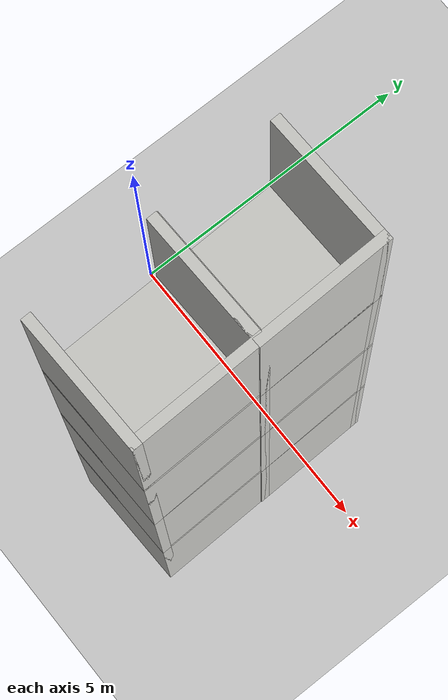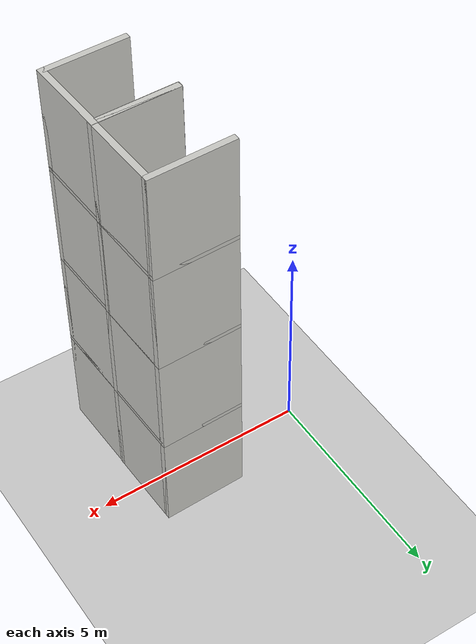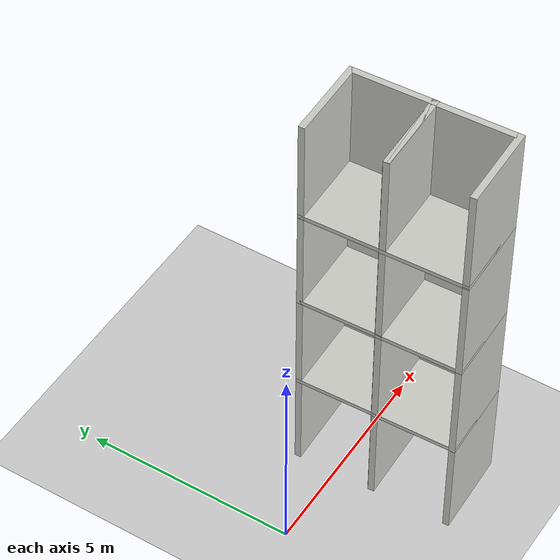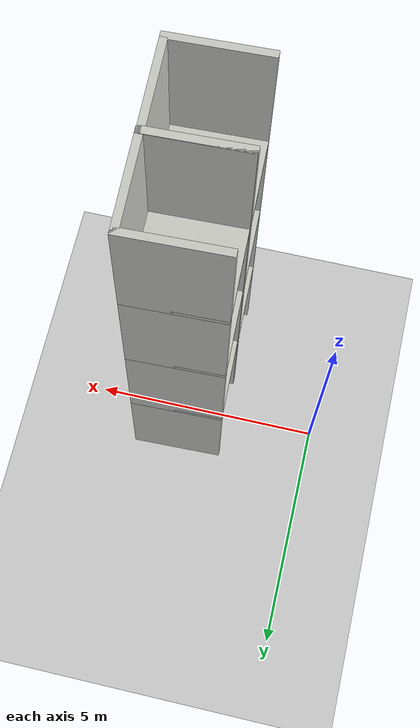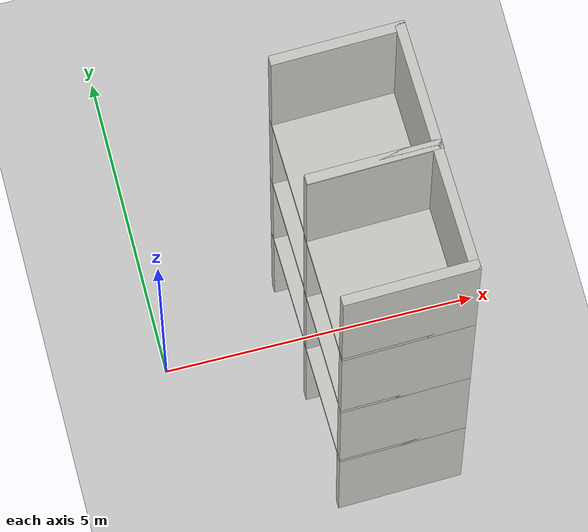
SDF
<sdf version="1.7">
 <world name="default">
  <light name="sun" type="directional">
   <pose>0 0 10 0 -0 0</pose>
   <diffuse>0.8 0.8 0.8 1</diffuse>
   <specular>0.2 0.2 0.2 1</specular>
   <attenuation>
    <range>1000</range>
    <constant>0.9</constant>
    <linear>0.01</linear>
    <quadratic>0.001</quadratic>
   </attenuation>
   <direction>-0.5 0.1 -0.9</direction>
   <spot><inner_angle>0</inner_angle><outer_angle>0</outer_angle><falloff>0</falloff></spot>
  </light>
  <model name="ground_plane">
   <static>1</static>
   <link name="link">
    <collision name="collision">
     <geometry><plane><normal>0 0 1</normal><size>100 100</size></plane></geometry>
     <surface>
      <contact><collide_bitmask>65535</collide_bitmask></contact>
      <friction><ode><mu>100</mu><mu2>50</mu2></ode></friction>
     </surface>
    </collision>
    <visual name="visual">
     <cast_shadows>0</cast_shadows>
     <geometry><plane><normal>0 0 1</normal><size>100 100</size></plane></geometry>
     <material>
      <script><uri>file://media/materials/scripts/gazebo.material</uri><name>Gazebo/Grey</name></script>
     </material>
    </visual>
   </link>
  </model>
  <gravity>0 0 -9.8</gravity>
  <magnetic_field>6e-06 2.3e-05 -4.2e-05</magnetic_field>
  <atmosphere type="adiabatic"/>
  <physics type="ode">
   <max_step_size>0.001</max_step_size>
   <real_time_factor>1</real_time_factor>
   <real_time_update_rate>1000</real_time_update_rate>
  </physics>
  <scene><ambient>0.4 0.4 0.4 1</ambient><background>0.7 0.7 0.7 1</background><shadows>1</shadows></scene>
  <spherical_coordinates>
   <surface_model>EARTH_WGS84</surface_model>
   <latitude_deg>0</latitude_deg>
   <longitude_deg>0</longitude_deg>
   <elevation>0</elevation>
   <heading_deg>0</heading_deg>
  </spherical_coordinates>
  <model name="4th_building">
   <pose>2.36923 0.08295 0 0 -0 1.59915</pose>
   <link name="Floor_1">
    <collision name="Floor_1_Collision">
     <geometry><box><size>2 2 0.1</size></box></geometry>
     <pose>0 0 0.05 0 -0 0</pose>
    </collision>
    <visual name="Floor_1_Visual">
     <pose>0 0 0.05 0 -0 0</pose>
     <geometry><box><size>2 2 0.1</size></box></geometry>
     <material>
      <script><uri>file://media/materials/scripts/gazebo.material</uri><name>Gazebo/CeilingTiled</name></script>
      <ambient>1 1 1 1</ambient>
     </material>
     <meta><layer>1</layer></meta>
    </visual>
    <pose>-1.9225 -0.6325 2.5 0 -0 0</pose>
   </link>
   <link name="Floor_10">
    <collision name="Floor_10_Collision">
     <geometry><box><size>2 2 0.1</size></box></geometry>
     <pose>0 0 0.05 0 -0 0</pose>
    </collision>
    <visual name="Floor_10_Visual">
     <pose>0 0 0.05 0 -0 0</pose>
     <geometry><box><size>2 2 0.1</size></box></geometry>
     <material>
      <script><uri>file://media/materials/scripts/gazebo.material</uri><name>Gazebo/CeilingTiled</name></script>
      <ambient>1 1 1 1</ambient>
     </material>
     <meta><layer>3</layer></meta>
    </visual>
    <pose>-1.9225 -0.6325 7.5 0 -0 0</pose>
   </link>
   <link name="Floor_9">
    <collision name="Floor_9_Collision">
     <geometry><box><size>2 2 0.1</size></box></geometry>
     <pose>0 0 0.05 0 -0 0</pose>
    </collision>
    <visual name="Floor_9_Visual">
     <pose>0 0 0.05 0 -0 0</pose>
     <geometry><box><size>2 2 0.1</size></box></geometry>
     <material>
      <script><uri>file://media/materials/scripts/gazebo.material</uri><name>Gazebo/CeilingTiled</name></script>
      <ambient>1 1 1 1</ambient>
     </material>
     <meta><layer>2</layer></meta>
    </visual>
    <pose>-1.9225 -0.6325 5 0 -0 0</pose>
   </link>
   <link name="Wall_13">
    <collision name="Wall_13_Collision">
     <geometry><box><size>2 0.15 2.5</size></box></geometry>
     <pose>0 0 1.25 0 -0 0</pose>
    </collision>
    <visual name="Wall_13_Visual">
     <pose>0 0 1.25 0 -0 0</pose>
     <geometry><box><size>2 0.15 2.5</size></box></geometry>
     <material>
      <script><uri>file://media/materials/scripts/gazebo.material</uri><name>Gazebo/CeilingTiled</name></script>
      <ambient>1 1 1 1</ambient>
     </material>
     <meta><layer>0</layer></meta>
    </visual>
    <pose>-2.8475 -0.6325 0 0 -0 -1.5708</pose>
   </link>
   <link name="Wall_14">
    <collision name="Wall_14_Collision">
     <geometry><box><size>2 0.15 2.5</size></box></geometry>
     <pose>0 0 1.25 0 -0 0</pose>
    </collision>
    <visual name="Wall_14_Visual">
     <pose>0 0 1.25 0 -0 0</pose>
     <geometry><box><size>2 0.15 2.5</size></box></geometry>
     <material>
      <script><uri>file://media/materials/scripts/gazebo.material</uri><name>Gazebo/CeilingTiled</name></script>
      <ambient>1 1 1 1</ambient>
     </material>
     <meta><layer>0</layer></meta>
    </visual>
    <pose>-1.9225 -1.5575 0 0 -0 0</pose>
   </link>
   <link name="Wall_15">
    <collision name="Wall_15_Collision">
     <geometry><box><size>2 0.15 2.5</size></box></geometry>
     <pose>0 0 1.25 0 -0 0</pose>
    </collision>
    <visual name="Wall_15_Visual">
     <pose>0 0 1.25 0 -0 0</pose>
     <geometry><box><size>2 0.15 2.5</size></box></geometry>
     <material>
      <script><uri>file://media/materials/scripts/gazebo.material</uri><name>Gazebo/CeilingTiled</name></script>
      <ambient>1 1 1 1</ambient>
     </material>
     <meta><layer>0</layer></meta>
    </visual>
    <pose>-0.9975 -0.6325 0 0 -0 1.5708</pose>
   </link>
   <link name="Wall_17">
    <collision name="Wall_17_Collision">
     <geometry><box><size>2 0.15 2.5</size></box></geometry>
     <pose>0 0 1.25 0 -0 0</pose>
    </collision>
    <visual name="Wall_17_Visual">
     <pose>0 0 1.25 0 -0 0</pose>
     <geometry><box><size>2 0.15 2.5</size></box></geometry>
     <material>
      <script><uri>file://media/materials/scripts/gazebo.material</uri><name>Gazebo/CeilingTiled</name></script>
      <ambient>1 1 1 1</ambient>
     </material>
     <meta><layer>1</layer></meta>
    </visual>
    <pose>-2.8475 -0.6325 2.5 0 -0 -1.5708</pose>
   </link>
   <link name="Wall_18">
    <collision name="Wall_18_Collision">
     <geometry><box><size>2 0.15 2.5</size></box></geometry>
     <pose>0 0 1.25 0 -0 0</pose>
    </collision>
    <visual name="Wall_18_Visual">
     <pose>0 0 1.25 0 -0 0</pose>
     <geometry><box><size>2 0.15 2.5</size></box></geometry>
     <material>
      <script><uri>file://media/materials/scripts/gazebo.material</uri><name>Gazebo/CeilingTiled</name></script>
      <ambient>1 1 1 1</ambient>
     </material>
     <meta><layer>1</layer></meta>
    </visual>
    <pose>-1.9225 -1.5575 2.5 0 -0 0</pose>
   </link>
   <link name="Wall_19">
    <collision name="Wall_19_Collision">
     <geometry><box><size>2 0.15 2.5</size></box></geometry>
     <pose>0 0 1.25 0 -0 0</pose>
    </collision>
    <visual name="Wall_19_Visual">
     <pose>0 0 1.25 0 -0 0</pose>
     <geometry><box><size>2 0.15 2.5</size></box></geometry>
     <material>
      <script><uri>file://media/materials/scripts/gazebo.material</uri><name>Gazebo/CeilingTiled</name></script>
      <ambient>1 1 1 1</ambient>
     </material>
     <meta><layer>1</layer></meta>
    </visual>
    <pose>-0.9975 -0.6325 2.5 0 -0 1.5708</pose>
   </link>
   <link name="Wall_40">
    <collision name="Wall_40_Collision">
     <geometry><box><size>2 0.15 2.5</size></box></geometry>
     <pose>0 0 1.25 0 -0 0</pose>
    </collision>
    <visual name="Wall_40_Visual">
     <pose>0 0 1.25 0 -0 0</pose>
     <geometry><box><size>2 0.15 2.5</size></box></geometry>
     <material>
      <script><uri>file://media/materials/scripts/gazebo.material</uri><name>Gazebo/CeilingTiled</name></script>
      <ambient>1 1 1 1</ambient>
     </material>
     <meta><layer>2</layer></meta>
    </visual>
    <pose>-2.8475 -0.6325 5 0 -0 -1.5708</pose>
   </link>
   <link name="Wall_41">
    <collision name="Wall_41_Collision">
     <geometry><box><size>2 0.15 2.5</size></box></geometry>
     <pose>0 0 1.25 0 -0 0</pose>
    </collision>
    <visual name="Wall_41_Visual">
     <pose>0 0 1.25 0 -0 0</pose>
     <geometry><box><size>2 0.15 2.5</size></box></geometry>
     <material>
      <script><uri>file://media/materials/scripts/gazebo.material</uri><name>Gazebo/CeilingTiled</name></script>
      <ambient>1 1 1 1</ambient>
     </material>
     <meta><layer>2</layer></meta>
    </visual>
    <pose>-1.9225 -1.5575 5 0 -0 0</pose>
   </link>
   <link name="Wall_42">
    <collision name="Wall_42_Collision">
     <geometry><box><size>2 0.15 2.5</size></box></geometry>
     <pose>0 0 1.25 0 -0 0</pose>
    </collision>
    <visual name="Wall_42_Visual">
     <pose>0 0 1.25 0 -0 0</pose>
     <geometry><box><size>2 0.15 2.5</size></box></geometry>
     <material>
      <script><uri>file://media/materials/scripts/gazebo.material</uri><name>Gazebo/CeilingTiled</name></script>
      <ambient>1 1 1 1</ambient>
     </material>
     <meta><layer>2</layer></meta>
    </visual>
    <pose>-0.9975 -0.6325 5 0 -0 1.5708</pose>
   </link>
   <link name="Wall_43">
    <collision name="Wall_43_Collision">
     <geometry><box><size>2 0.15 2.5</size></box></geometry>
     <pose>0 0 1.25 0 -0 0</pose>
    </collision>
    <visual name="Wall_43_Visual">
     <pose>0 0 1.25 0 -0 0</pose>
     <geometry><box><size>2 0.15 2.5</size></box></geometry>
     <material>
      <script><uri>file://media/materials/scripts/gazebo.material</uri><name>Gazebo/CeilingTiled</name></script>
      <ambient>1 1 1 1</ambient>
     </material>
     <meta><layer>3</layer></meta>
    </visual>
    <pose>-2.8475 -0.6325 7.5 0 -0 -1.5708</pose>
   </link>
   <link name="Wall_44">
    <collision name="Wall_44_Collision">
     <geometry><box><size>2 0.15 2.5</size></box></geometry>
     <pose>0 0 1.25 0 -0 0</pose>
    </collision>
    <visual name="Wall_44_Visual">
     <pose>0 0 1.25 0 -0 0</pose>
     <geometry><box><size>2 0.15 2.5</size></box></geometry>
     <material>
      <script><uri>file://media/materials/scripts/gazebo.material</uri><name>Gazebo/CeilingTiled</name></script>
      <ambient>1 1 1 1</ambient>
     </material>
     <meta><layer>3</layer></meta>
    </visual>
    <pose>-1.9225 -1.5575 7.5 0 -0 0</pose>
   </link>
   <link name="Wall_45">
    <collision name="Wall_45_Collision">
     <geometry><box><size>2 0.15 2.5</size></box></geometry>
     <pose>0 0 1.25 0 -0 0</pose>
    </collision>
    <visual name="Wall_45_Visual">
     <pose>0 0 1.25 0 -0 0</pose>
     <geometry><box><size>2 0.15 2.5</size></box></geometry>
     <material>
      <script><uri>file://media/materials/scripts/gazebo.material</uri><name>Gazebo/CeilingTiled</name></script>
      <ambient>1 1 1 1</ambient>
     </material>
     <meta><layer>3</layer></meta>
    </visual>
    <pose>-0.9975 -0.6325 7.5 0 -0 1.5708</pose>
   </link>
   <static>1</static>
  </model>
  <model name="4th_building_clone">
   <pose>2.32615 1.9428 0 0 -0 1.59915</pose>
   <link name="Floor_1">
    <collision name="Floor_1_Collision">
     <geometry><box><size>2 2 0.1</size></box></geometry>
     <pose>0 0 0.05 0 -0 0</pose>
    </collision>
    <visual name="Floor_1_Visual">
     <pose>0 0 0.05 0 -0 0</pose>
     <geometry><box><size>2 2 0.1</size></box></geometry>
     <material>
      <script><uri>file://media/materials/scripts/gazebo.material</uri><name>Gazebo/CeilingTiled</name></script>
      <ambient>1 1 1 1</ambient>
     </material>
     <meta><layer>1</layer></meta>
    </visual>
    <pose>-1.9225 -0.6325 2.5 0 -0 0</pose>
   </link>
   <link name="Floor_10">
    <collision name="Floor_10_Collision">
     <geometry><box><size>2 2 0.1</size></box></geometry>
     <pose>0 0 0.05 0 -0 0</pose>
    </collision>
    <visual name="Floor_10_Visual">
     <pose>0 0 0.05 0 -0 0</pose>
     <geometry><box><size>2 2 0.1</size></box></geometry>
     <material>
      <script><uri>file://media/materials/scripts/gazebo.material</uri><name>Gazebo/CeilingTiled</name></script>
      <ambient>1 1 1 1</ambient>
     </material>
     <meta><layer>3</layer></meta>
    </visual>
    <pose>-1.9225 -0.6325 7.5 0 -0 0</pose>
   </link>
   <link name="Floor_9">
    <collision name="Floor_9_Collision">
     <geometry><box><size>2 2 0.1</size></box></geometry>
     <pose>0 0 0.05 0 -0 0</pose>
    </collision>
    <visual name="Floor_9_Visual">
     <pose>0 0 0.05 0 -0 0</pose>
     <geometry><box><size>2 2 0.1</size></box></geometry>
     <material>
      <script><uri>file://media/materials/scripts/gazebo.material</uri><name>Gazebo/CeilingTiled</name></script>
      <ambient>1 1 1 1</ambient>
     </material>
     <meta><layer>2</layer></meta>
    </visual>
    <pose>-1.9225 -0.6325 5 0 -0 0</pose>
   </link>
   <link name="Wall_13">
    <collision name="Wall_13_Collision">
     <geometry><box><size>2 0.15 2.5</size></box></geometry>
     <pose>0 0 1.25 0 -0 0</pose>
    </collision>
    <visual name="Wall_13_Visual">
     <pose>0 0 1.25 0 -0 0</pose>
     <geometry><box><size>2 0.15 2.5</size></box></geometry>
     <material>
      <script><uri>file://media/materials/scripts/gazebo.material</uri><name>Gazebo/CeilingTiled</name></script>
      <ambient>1 1 1 1</ambient>
     </material>
     <meta><layer>0</layer></meta>
    </visual>
    <pose>-2.8475 -0.6325 0 0 -0 -1.5708</pose>
   </link>
   <link name="Wall_14">
    <collision name="Wall_14_Collision">
     <geometry><box><size>2 0.15 2.5</size></box></geometry>
     <pose>0 0 1.25 0 -0 0</pose>
    </collision>
    <visual name="Wall_14_Visual">
     <pose>0 0 1.25 0 -0 0</pose>
     <geometry><box><size>2 0.15 2.5</size></box></geometry>
     <material>
      <script><uri>file://media/materials/scripts/gazebo.material</uri><name>Gazebo/CeilingTiled</name></script>
      <ambient>1 1 1 1</ambient>
     </material>
     <meta><layer>0</layer></meta>
    </visual>
    <pose>-1.9225 -1.5575 0 0 -0 0</pose>
   </link>
   <link name="Wall_15">
    <collision name="Wall_15_Collision">
     <geometry><box><size>2 0.15 2.5</size></box></geometry>
     <pose>0 0 1.25 0 -0 0</pose>
    </collision>
    <visual name="Wall_15_Visual">
     <pose>0 0 1.25 0 -0 0</pose>
     <geometry><box><size>2 0.15 2.5</size></box></geometry>
     <material>
      <script><uri>file://media/materials/scripts/gazebo.material</uri><name>Gazebo/CeilingTiled</name></script>
      <ambient>1 1 1 1</ambient>
     </material>
     <meta><layer>0</layer></meta>
    </visual>
    <pose>-0.9975 -0.6325 0 0 -0 1.5708</pose>
   </link>
   <link name="Wall_17">
    <collision name="Wall_17_Collision">
     <geometry><box><size>2 0.15 2.5</size></box></geometry>
     <pose>0 0 1.25 0 -0 0</pose>
    </collision>
    <visual name="Wall_17_Visual">
     <pose>0 0 1.25 0 -0 0</pose>
     <geometry><box><size>2 0.15 2.5</size></box></geometry>
     <material>
      <script><uri>file://media/materials/scripts/gazebo.material</uri><name>Gazebo/CeilingTiled</name></script>
      <ambient>1 1 1 1</ambient>
     </material>
     <meta><layer>1</layer></meta>
    </visual>
    <pose>-2.8475 -0.6325 2.5 0 -0 -1.5708</pose>
   </link>
   <link name="Wall_18">
    <collision name="Wall_18_Collision">
     <geometry><box><size>2 0.15 2.5</size></box></geometry>
     <pose>0 0 1.25 0 -0 0</pose>
    </collision>
    <visual name="Wall_18_Visual">
     <pose>0 0 1.25 0 -0 0</pose>
     <geometry><box><size>2 0.15 2.5</size></box></geometry>
     <material>
      <script><uri>file://media/materials/scripts/gazebo.material</uri><name>Gazebo/CeilingTiled</name></script>
      <ambient>1 1 1 1</ambient>
     </material>
     <meta><layer>1</layer></meta>
    </visual>
    <pose>-1.9225 -1.5575 2.5 0 -0 0</pose>
   </link>
   <link name="Wall_19">
    <collision name="Wall_19_Collision">
     <geometry><box><size>2 0.15 2.5</size></box></geometry>
     <pose>0 0 1.25 0 -0 0</pose>
    </collision>
    <visual name="Wall_19_Visual">
     <pose>0 0 1.25 0 -0 0</pose>
     <geometry><box><size>2 0.15 2.5</size></box></geometry>
     <material>
      <script><uri>file://media/materials/scripts/gazebo.material</uri><name>Gazebo/CeilingTiled</name></script>
      <ambient>1 1 1 1</ambient>
     </material>
     <meta><layer>1</layer></meta>
    </visual>
    <pose>-0.9975 -0.6325 2.5 0 -0 1.5708</pose>
   </link>
   <link name="Wall_40">
    <collision name="Wall_40_Collision">
     <geometry><box><size>2 0.15 2.5</size></box></geometry>
     <pose>0 0 1.25 0 -0 0</pose>
    </collision>
    <visual name="Wall_40_Visual">
     <pose>0 0 1.25 0 -0 0</pose>
     <geometry><box><size>2 0.15 2.5</size></box></geometry>
     <material>
      <script><uri>file://media/materials/scripts/gazebo.material</uri><name>Gazebo/CeilingTiled</name></script>
      <ambient>1 1 1 1</ambient>
     </material>
     <meta><layer>2</layer></meta>
    </visual>
    <pose>-2.8475 -0.6325 5 0 -0 -1.5708</pose>
   </link>
   <link name="Wall_41">
    <collision name="Wall_41_Collision">
     <geometry><box><size>2 0.15 2.5</size></box></geometry>
     <pose>0 0 1.25 0 -0 0</pose>
    </collision>
    <visual name="Wall_41_Visual">
     <pose>0 0 1.25 0 -0 0</pose>
     <geometry><box><size>2 0.15 2.5</size></box></geometry>
     <material>
      <script><uri>file://media/materials/scripts/gazebo.material</uri><name>Gazebo/CeilingTiled</name></script>
      <ambient>1 1 1 1</ambient>
     </material>
     <meta><layer>2</layer></meta>
    </visual>
    <pose>-1.9225 -1.5575 5 0 -0 0</pose>
   </link>
   <link name="Wall_42">
    <collision name="Wall_42_Collision">
     <geometry><box><size>2 0.15 2.5</size></box></geometry>
     <pose>0 0 1.25 0 -0 0</pose>
    </collision>
    <visual name="Wall_42_Visual">
     <pose>0 0 1.25 0 -0 0</pose>
     <geometry><box><size>2 0.15 2.5</size></box></geometry>
     <material>
      <script><uri>file://media/materials/scripts/gazebo.material</uri><name>Gazebo/CeilingTiled</name></script>
      <ambient>1 1 1 1</ambient>
     </material>
     <meta><layer>2</layer></meta>
    </visual>
    <pose>-0.9975 -0.6325 5 0 -0 1.5708</pose>
   </link>
   <link name="Wall_43">
    <collision name="Wall_43_Collision">
     <geometry><box><size>2 0.15 2.5</size></box></geometry>
     <pose>0 0 1.25 0 -0 0</pose>
    </collision>
    <visual name="Wall_43_Visual">
     <pose>0 0 1.25 0 -0 0</pose>
     <geometry><box><size>2 0.15 2.5</size></box></geometry>
     <material>
      <script><uri>file://media/materials/scripts/gazebo.material</uri><name>Gazebo/CeilingTiled</name></script>
      <ambient>1 1 1 1</ambient>
     </material>
     <meta><layer>3</layer></meta>
    </visual>
    <pose>-2.8475 -0.6325 7.5 0 -0 -1.5708</pose>
   </link>
   <link name="Wall_44">
    <collision name="Wall_44_Collision">
     <geometry><box><size>2 0.15 2.5</size></box></geometry>
     <pose>0 0 1.25 0 -0 0</pose>
    </collision>
    <visual name="Wall_44_Visual">
     <pose>0 0 1.25 0 -0 0</pose>
     <geometry><box><size>2 0.15 2.5</size></box></geometry>
     <material>
      <script><uri>file://media/materials/scripts/gazebo.material</uri><name>Gazebo/CeilingTiled</name></script>
      <ambient>1 1 1 1</ambient>
     </material>
     <meta><layer>3</layer></meta>
    </visual>
    <pose>-1.9225 -1.5575 7.5 0 -0 0</pose>
   </link>
   <link name="Wall_45">
    <collision name="Wall_45_Collision">
     <geometry><box><size>2 0.15 2.5</size></box></geometry>
     <pose>0 0 1.25 0 -0 0</pose>
    </collision>
    <visual name="Wall_45_Visual">
     <pose>0 0 1.25 0 -0 0</pose>
     <geometry><box><size>2 0.15 2.5</size></box></geometry>
     <material>
      <script><uri>file://media/materials/scripts/gazebo.material</uri><name>Gazebo/CeilingTiled</name></script>
      <ambient>1 1 1 1</ambient>
     </material>
     <meta><layer>3</layer></meta>
    </visual>
    <pose>-0.9975 -0.6325 7.5 0 -0 1.5708</pose>
   </link>
   <static>1</static>
  </model>
 </world>
</sdf>
